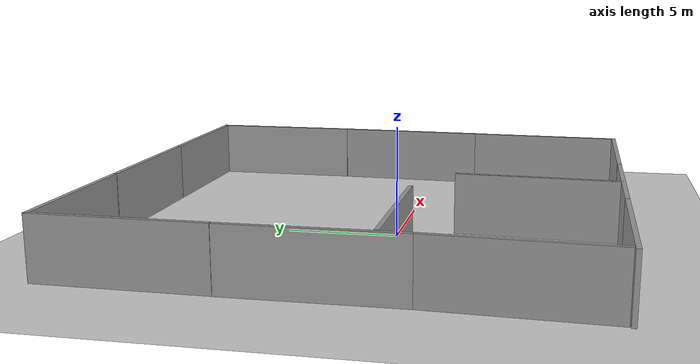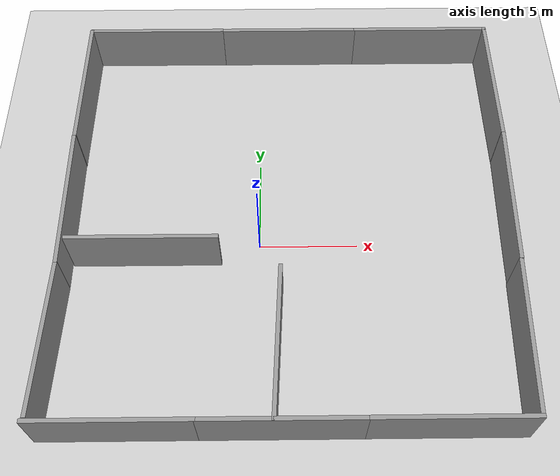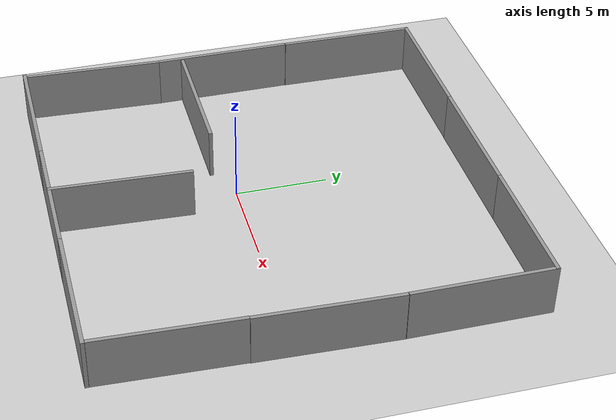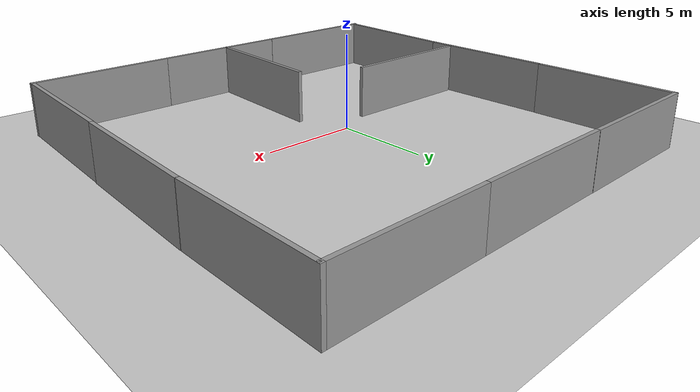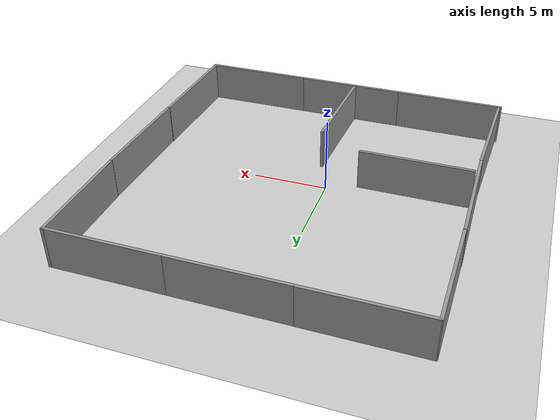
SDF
<sdf version="1.6">
 <world name="default">
  <light name="sun" type="directional">
   <pose>0 0 10 0 -0 0</pose>
   <diffuse>0.8 0.8 0.8 1</diffuse>
   <specular>0.1 0.1 0.1 1</specular>
   <attenuation>
    <range>1000</range>
    <constant>0.9</constant>
    <linear>0.01</linear>
    <quadratic>0.001</quadratic>
   </attenuation>
   <direction>-0.5 0.5 -1</direction>
  </light>
  <model name="ground_plane">
   <static>1</static>
   <link name="link">
    <collision name="collision">
     <geometry><plane><normal>0 0 1</normal><size>100 100</size></plane></geometry>
     <surface><friction><ode><mu>100</mu><mu2>50</mu2></ode></friction></surface>
    </collision>
    <visual name="visual">
     <cast_shadows>0</cast_shadows>
     <geometry><plane><normal>0 0 1</normal><size>100 100</size></plane></geometry>
     <material>
      <script><uri>file://media/materials/scripts/gazebo.material</uri><name>Gazebo/Grey</name></script>
     </material>
    </visual>
   </link>
  </model>
  <gravity>0 0 -9.8</gravity>
  <magnetic_field>6e-06 2.3e-05 -4.2e-05</magnetic_field>
  <atmosphere type="adiabatic"/>
  <physics name="default_physics" default="0" type="ode">
   <max_step_size>0.001</max_step_size>
   <real_time_factor>1</real_time_factor>
   <real_time_update_rate>1000</real_time_update_rate>
  </physics>
  <scene><ambient>0.4 0.4 0.4 1</ambient><background>0.7 0.7 0.7 1</background><shadows>1</shadows></scene>
  <spherical_coordinates>
   <surface_model>EARTH_WGS84</surface_model>
   <latitude_deg>0</latitude_deg>
   <longitude_deg>0</longitude_deg>
   <elevation>0</elevation>
   <heading_deg>0</heading_deg>
  </spherical_coordinates>
  <model name="grey_wall">
   <static>1</static>
   <link name="link">
    <pose>0 0 1.4 0 -0 0</pose>
    <collision name="collision"><geometry><box><size>7.5 0.2 2.8</size></box></geometry></collision>
    <visual name="visual">
     <cast_shadows>0</cast_shadows>
     <geometry><box><size>7.5 0.2 2.8</size></box></geometry>
     <material>
      <script>
       <uri>model://grey_wall/materials/scripts</uri>
       <uri>model://grey_wall/materials/textures</uri>
       <name>vrc/grey_wall</name>
      </script>
     </material>
    </visual>
   </link>
   <pose>-6.34444 -9.89198 0 0 -0 0</pose>
  </model>
  <model name="grey_wall_0">
   <static>1</static>
   <link name="link">
    <pose>0 0 1.4 0 -0 0</pose>
    <collision name="collision"><geometry><box><size>7.5 0.2 2.8</size></box></geometry></collision>
    <visual name="visual">
     <cast_shadows>0</cast_shadows>
     <geometry><box><size>7.5 0.2 2.8</size></box></geometry>
     <material>
      <script>
       <uri>model://grey_wall/materials/scripts</uri>
       <uri>model://grey_wall/materials/textures</uri>
       <name>vrc/grey_wall</name>
      </script>
     </material>
    </visual>
   </link>
   <pose>1.0783 -9.89279 0 0 -0 0</pose>
  </model>
  <model name="grey_wall_1">
   <static>1</static>
   <link name="link">
    <pose>0 0 1.4 0 -0 0</pose>
    <collision name="collision"><geometry><box><size>7.5 0.2 2.8</size></box></geometry></collision>
    <visual name="visual">
     <cast_shadows>0</cast_shadows>
     <geometry><box><size>7.5 0.2 2.8</size></box></geometry>
     <material>
      <script>
       <uri>model://grey_wall/materials/scripts</uri>
       <uri>model://grey_wall/materials/textures</uri>
       <name>vrc/grey_wall</name>
      </script>
     </material>
    </visual>
   </link>
   <pose>8.54035 -9.88911 0 0 -0 0</pose>
  </model>
  <model name="grey_wall_2">
   <static>1</static>
   <link name="link">
    <pose>0 0 1.4 0 -0 0</pose>
    <collision name="collision"><geometry><box><size>7.5 0.2 2.8</size></box></geometry></collision>
    <visual name="visual">
     <cast_shadows>0</cast_shadows>
     <geometry><box><size>7.5 0.2 2.8</size></box></geometry>
     <material>
      <script>
       <uri>model://grey_wall/materials/scripts</uri>
       <uri>model://grey_wall/materials/textures</uri>
       <name>vrc/grey_wall</name>
      </script>
     </material>
    </visual>
   </link>
   <pose>9.05026 12.6292 0 0 -0 0</pose>
  </model>
  <model name="grey_wall_3">
   <static>1</static>
   <link name="link">
    <pose>0 0 1.4 0 -0 0</pose>
    <collision name="collision"><geometry><box><size>7.5 0.2 2.8</size></box></geometry></collision>
    <visual name="visual">
     <cast_shadows>0</cast_shadows>
     <geometry><box><size>7.5 0.2 2.8</size></box></geometry>
     <material>
      <script>
       <uri>model://grey_wall/materials/scripts</uri>
       <uri>model://grey_wall/materials/textures</uri>
       <name>vrc/grey_wall</name>
      </script>
     </material>
    </visual>
   </link>
   <pose>1.62614 12.6281 0 0 -0 0</pose>
  </model>
  <model name="grey_wall_4">
   <static>1</static>
   <link name="link">
    <pose>0 0 1.4 0 -0 0</pose>
    <collision name="collision"><geometry><box><size>7.5 0.2 2.8</size></box></geometry></collision>
    <visual name="visual">
     <cast_shadows>0</cast_shadows>
     <geometry><box><size>7.5 0.2 2.8</size></box></geometry>
     <material>
      <script>
       <uri>model://grey_wall/materials/scripts</uri>
       <uri>model://grey_wall/materials/textures</uri>
       <name>vrc/grey_wall</name>
      </script>
     </material>
    </visual>
   </link>
   <pose>-5.87332 12.639 0 0 -0 0</pose>
  </model>
  <model name="grey_wall_5">
   <static>1</static>
   <link name="link">
    <pose>0 0 1.4 0 -0 0</pose>
    <collision name="collision"><geometry><box><size>7.5 0.2 2.8</size></box></geometry></collision>
    <visual name="visual">
     <cast_shadows>0</cast_shadows>
     <geometry><box><size>7.5 0.2 2.8</size></box></geometry>
     <material>
      <script>
       <uri>model://grey_wall/materials/scripts</uri>
       <uri>model://grey_wall/materials/textures</uri>
       <name>vrc/grey_wall</name>
      </script>
     </material>
    </visual>
   </link>
   <pose>12.3294 -6.03586 0 0 -0 1.5323</pose>
  </model>
  <model name="grey_wall_6">
   <static>1</static>
   <link name="link">
    <pose>0 0 1.4 0 -0 0</pose>
    <collision name="collision"><geometry><box><size>7.5 0.2 2.8</size></box></geometry></collision>
    <visual name="visual">
     <cast_shadows>0</cast_shadows>
     <geometry><box><size>7.5 0.2 2.8</size></box></geometry>
     <material>
      <script>
       <uri>model://grey_wall/materials/scripts</uri>
       <uri>model://grey_wall/materials/textures</uri>
       <name>vrc/grey_wall</name>
      </script>
     </material>
    </visual>
   </link>
   <pose>12.6222 1.46265 0 0 -0 1.53783</pose>
  </model>
  <model name="grey_wall_7">
   <static>1</static>
   <link name="link">
    <pose>0 0 1.4 0 -0 0</pose>
    <collision name="collision"><geometry><box><size>7.5 0.2 2.8</size></box></geometry></collision>
    <visual name="visual">
     <cast_shadows>0</cast_shadows>
     <geometry><box><size>7.5 0.2 2.8</size></box></geometry>
     <material>
      <script>
       <uri>model://grey_wall/materials/scripts</uri>
       <uri>model://grey_wall/materials/textures</uri>
       <name>vrc/grey_wall</name>
      </script>
     </material>
    </visual>
   </link>
   <pose>12.7348 8.98058 0 0 -0 1.57211</pose>
  </model>
  <model name="grey_wall_8">
   <static>1</static>
   <link name="link">
    <pose>0 0 1.4 0 -0 0</pose>
    <collision name="collision"><geometry><box><size>7.5 0.2 2.8</size></box></geometry></collision>
    <visual name="visual">
     <cast_shadows>0</cast_shadows>
     <geometry><box><size>7.5 0.2 2.8</size></box></geometry>
     <material>
      <script>
       <uri>model://grey_wall/materials/scripts</uri>
       <uri>model://grey_wall/materials/textures</uri>
       <name>vrc/grey_wall</name>
      </script>
     </material>
    </visual>
   </link>
   <pose>-9.61503 8.97453 0 0 -0 1.56311</pose>
  </model>
  <model name="grey_wall_9">
   <static>1</static>
   <link name="link">
    <pose>0 0 1.4 0 -0 0</pose>
    <collision name="collision"><geometry><box><size>7.5 0.2 2.8</size></box></geometry></collision>
    <visual name="visual">
     <cast_shadows>0</cast_shadows>
     <geometry><box><size>7.5 0.2 2.8</size></box></geometry>
     <material>
      <script>
       <uri>model://grey_wall/materials/scripts</uri>
       <uri>model://grey_wall/materials/textures</uri>
       <name>vrc/grey_wall</name>
      </script>
     </material>
    </visual>
   </link>
   <pose>-9.62822 1.46154 0 0 -0 1.57953</pose>
  </model>
  <model name="grey_wall_10">
   <static>1</static>
   <link name="link">
    <pose>0 0 1.4 0 -0 0</pose>
    <collision name="collision"><geometry><box><size>7.5 0.2 2.8</size></box></geometry></collision>
    <visual name="visual">
     <cast_shadows>0</cast_shadows>
     <geometry><box><size>7.5 0.2 2.8</size></box></geometry>
     <material>
      <script>
       <uri>model://grey_wall/materials/scripts</uri>
       <uri>model://grey_wall/materials/textures</uri>
       <name>vrc/grey_wall</name>
      </script>
     </material>
    </visual>
   </link>
   <pose>-9.73866 -6.01703 0 0 -0 1.53178</pose>
  </model>
  <model name="grey_wall_12">
   <static>1</static>
   <link name="link">
    <pose>0 0 1.4 0 -0 0</pose>
    <collision name="collision"><geometry><box><size>7.5 0.2 2.8</size></box></geometry></collision>
    <visual name="visual">
     <cast_shadows>0</cast_shadows>
     <geometry><box><size>7.5 0.2 2.8</size></box></geometry>
     <material>
      <script>
       <uri>model://grey_wall/materials/scripts</uri>
       <uri>model://grey_wall/materials/textures</uri>
       <name>vrc/grey_wall</name>
      </script>
     </material>
    </visual>
   </link>
   <pose>-5.6793 -0.926508 0 0 -0 0</pose>
  </model>
  <model name="grey_wall_11">
   <static>1</static>
   <link name="link">
    <pose>0 0 1.4 0 -0 0</pose>
    <collision name="collision"><geometry><box><size>7.5 0.2 2.8</size></box></geometry></collision>
    <visual name="visual">
     <cast_shadows>0</cast_shadows>
     <geometry><box><size>7.5 0.2 2.8</size></box></geometry>
     <material>
      <script>
       <uri>model://grey_wall/materials/scripts</uri>
       <uri>model://grey_wall/materials/textures</uri>
       <name>vrc/grey_wall</name>
      </script>
     </material>
    </visual>
   </link>
   <pose>0.906177 -6.23613 0 0 -0 1.52761</pose>
  </model>
 </world>
</sdf>
